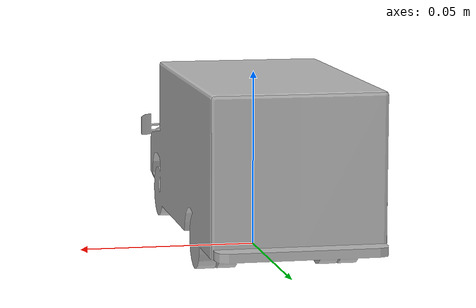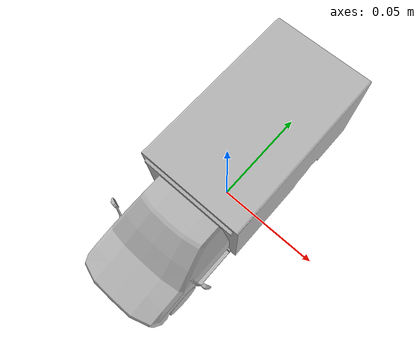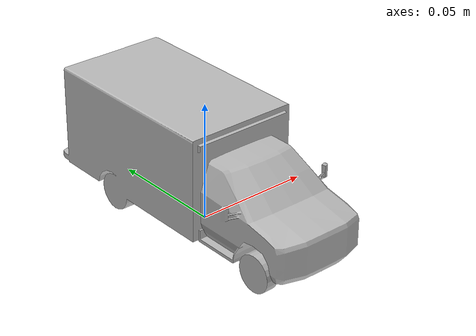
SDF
<?xml version="1.0" ?>
<sdf version="1.6">
  <model name="ambulance">
    <static>0</static>
	<pose>0 0 0 0 0 0</pose>
	<inertial>
        <mass>0.15</mass>
        <inertia>
          <ixx>0.00021084374999999999</ixx>
          <ixy>0</ixy>
          <ixz>0</ixz>
          <iyy>0.00021084374999999999</iyy>
          <iyz>0</iyz>
          <izz>0.00021084374999999999</izz>
        </inertia>
    </inertial>
    <link name="link">
      <collision name="collision">
        <geometry>
          <mesh>
            <scale>0.00045 0.00045 0.00045</scale>
            <uri>model://ambulance/meshes/ambulance.obj</uri>
          </mesh>
        </geometry>
		<surface>
			<friction>
              <ode>
                <mu>30.0</mu>
                <mu2>30.0</mu2>
              </ode>
            </friction>
            <contact>
              <ode>
                <kp>1000000.0</kp>
                <kd>100.0</kd>
                <max_vel>1.0</max_vel>
                <min_depth>0.002</min_depth>
              </ode>
            </contact>
        </surface>
      </collision>
      <visual name="visual">
        <geometry>
          <mesh>
            <scale>0.00045 0.00045 0.00045</scale>
            <uri>model://ambulance/meshes/ambulance.obj</uri>
          </mesh>
        </geometry>
      </visual>
    </link>
  </model>
</sdf>
